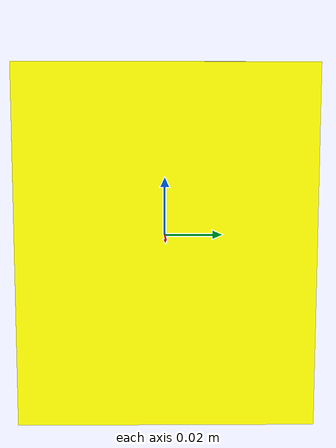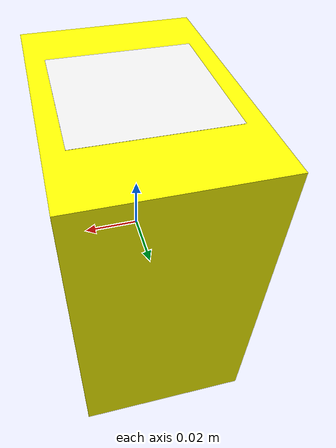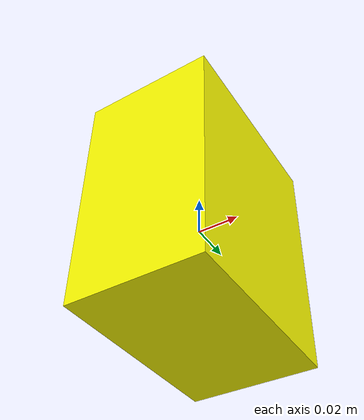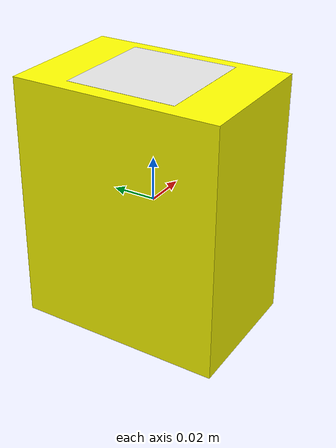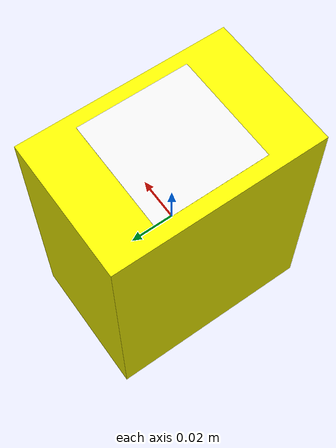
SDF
<?xml version="1.0"?>
<sdf version="1.8">
  <model name="yellow_cube">
    <static>false</static>
    <link name="link">
      <pose>0 0 0 0 0 0</pose>

      <!-- 惯性参数 -->
      <inertial>
        <mass>0.2</mass>
        <inertia>
	    <ixx>3.66e-4</ixx>
	    <iyy>2.88e-4</iyy>
	    <izz>2.22e-4</izz>
        </inertia>
      </inertial>

      <!-- 碰撞检测 -->
      <collision name="collision">
        <geometry>
          <box>
            <size>0.063 0.095 0.115</size>
          </box>
        </geometry>
        <surface>
          <contact>
            <ode>
              <mu>0.05</mu>
              <mu2>0.05</mu2>
            </ode>
          </contact>
          <friction>
            <ode>
              <mu>0.05</mu>
              <mu2>0.05</mu2>
            </ode>
          </friction>
        </surface>
      </collision>

      <!-- 主立方体视觉 -->
      <visual name="visual">
        <geometry>
          <box>
            <size>0.063 0.095 0.115</size>
          </box>
        </geometry>
        <material>
          <ambient>1 1 0 1</ambient>
          <diffuse>1 1 0 1</diffuse>
          <specular>0.1 0.1 0.1 1</specular>
        </material>
      </visual>

      <!-- ArUco 标记贴纸 - 顶部 (+Z方向) -->
      <visual name="aruco_sticker_top">
        <pose>0 0 0.058 0 0 0</pose>
        <geometry>
          <plane>
            <normal>0 0 1</normal>
            <size>0.05 0.05</size>
          </plane>
        </geometry>
        <material>
          <ambient>0.2 0.2 0.2 1</ambient>
          <diffuse>0.9 0.9 0.9 1</diffuse>
          <specular>0 0 0 1</specular>
          <emissive>0 0 0 1</emissive>
          <pbr>
            <metal>
              <albedo_map>
                file:///home/jiwei/.ignition/fuel/cube/materials/textures/aruco_marker_id42.png</albedo_map>
              <metalness>0.0</metalness>
              <roughness>0.9</roughness>
            </metal>
          </pbr>
        </material>
      </visual>

    </link>

    <!-- 插件：用于获取模型状态 -->
    <plugin filename="libignition-gazebo-pose-publisher-system.so"
      name="ignition::gazebo::systems::PosePublisher">
      <publish_link_pose>true</publish_link_pose>
      <use_pose_vector_msg>true</use_pose_vector_msg>
      <static_publisher>true</static_publisher>
      <static_update_frequency>1</static_update_frequency>
    </plugin>

  </model>
</sdf>
